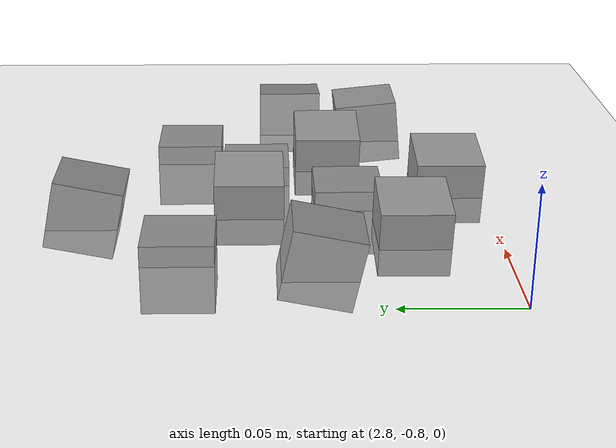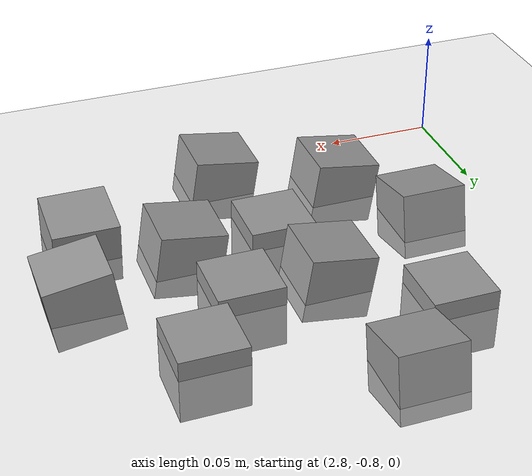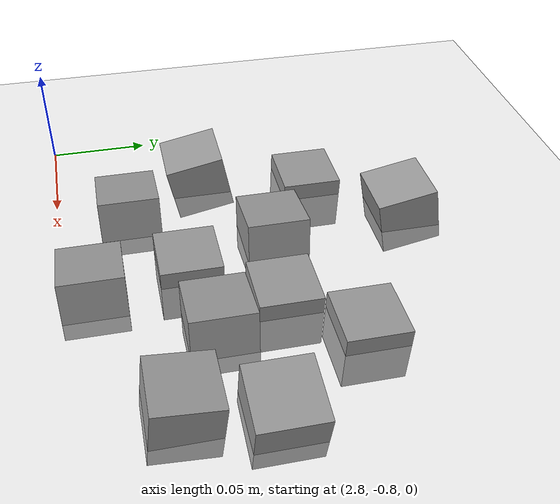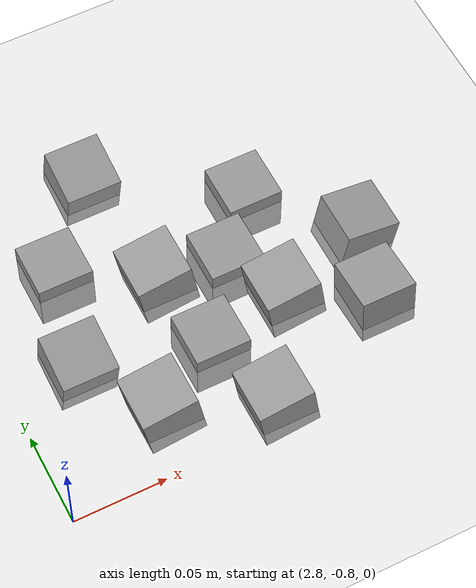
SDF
<sdf version="1.7">
 <world name="default">
  <model name="ground_plane">
   <static>1</static>
   <link name="link">
    <collision name="collision">
     <geometry><plane><normal>0 0 1</normal><size>100 100</size></plane></geometry>
     <surface><friction><ode><mu>100</mu><mu2>50</mu2></ode></friction></surface>
    </collision>
    <visual name="visual">
     <cast_shadows>0</cast_shadows>
     <geometry><plane><normal>0 0 1</normal><size>100 100</size></plane></geometry>
     <material>
      <script><uri>file://media/materials/scripts/gazebo.material</uri><name>Gazebo/Grey</name></script>
     </material>
    </visual>
   </link>
  </model>
  <model name="stone_road_9">
   <link name="link_0_clone_12">
    <inertial>
     <mass>1</mass>
     <inertia>
      <ixx>0.166667</ixx>
      <ixy>0</ixy>
      <ixz>0</ixz>
      <iyy>0.166667</iyy>
      <iyz>0</iyz>
      <izz>0.166667</izz>
     </inertia>
    </inertial>
    <pose>0.142624 -0.262715 0.003778 0.2 -0 0</pose>
    <kinematic>1</kinematic>
    <visual name="visual">
     <geometry><box><size>0.03 0.03 0.03</size></box></geometry>
     <material>
      <lighting>1</lighting>
      <script><uri>file://media/materials/scripts/gazebo.material</uri><name>Gazebo/Grey</name></script>
      <shader type="pixel"><normal_map>__default__</normal_map></shader>
      <ambient>0.3 0.3 0.3 1</ambient>
      <diffuse>0.7 0.7 0.7 1</diffuse>
      <specular>0.01 0.01 0.01 1</specular>
      <emissive>0 0 0 1</emissive>
     </material>
    </visual>
    <collision name="collision">
     <geometry><box><size>0.03 0.03 0.03</size></box></geometry>
     <surface>
      <friction>
       <ode><mu>1</mu><mu2>1</mu2><fdir1>0 0 0</fdir1><slip1>0</slip1><slip2>0</slip2></ode>
       <torsional>
        <coefficient>1</coefficient>
        <patch_radius>0</patch_radius>
        <surface_radius>0</surface_radius>
        <use_patch_radius>1</use_patch_radius>
        <ode><slip>0</slip></ode>
       </torsional>
      </friction>
      <bounce><restitution_coefficient>0</restitution_coefficient><threshold>1e+06</threshold></bounce>
      <contact>
       <collide_without_contact>0</collide_without_contact>
       <collide_without_contact_bitmask>1</collide_without_contact_bitmask>
       <collide_bitmask>1</collide_bitmask>
       <ode>
        <soft_cfm>0</soft_cfm>
        <soft_erp>0.2</soft_erp>
        <kp>1e+13</kp>
        <kd>1</kd>
        <max_vel>0.01</max_vel>
        <min_depth>0</min_depth>
       </ode>
       <bullet>
        <split_impulse>1</split_impulse>
        <split_impulse_penetration_threshold>-0.01</split_impulse_penetration_threshold>
        <soft_cfm>0</soft_cfm>
        <soft_erp>0.2</soft_erp>
        <kp>1e+13</kp>
        <kd>1</kd>
       </bullet>
      </contact>
     </surface>
    </collision>
   </link>
   <static>0</static>
   <pose>2.743 -0.362549 -0 0 -0 0</pose>
  </model>
  <model name="stone_road_12">
   <link name="link_0_clone_10">
    <inertial>
     <mass>1</mass>
     <inertia>
      <ixx>0.166667</ixx>
      <ixy>0</ixy>
      <ixz>0</ixz>
      <iyy>0.166667</iyy>
      <iyz>0</iyz>
      <izz>0.166667</izz>
     </inertia>
    </inertial>
    <pose>-0.01295 0.17123 0.003778 0.2 -0 0</pose>
    <kinematic>1</kinematic>
    <visual name="visual">
     <geometry><box><size>0.03 0.03 0.03</size></box></geometry>
     <material>
      <lighting>1</lighting>
      <script><uri>file://media/materials/scripts/gazebo.material</uri><name>Gazebo/Grey</name></script>
      <shader type="pixel"><normal_map>__default__</normal_map></shader>
      <ambient>0.3 0.3 0.3 1</ambient>
      <diffuse>0.7 0.7 0.7 1</diffuse>
      <specular>0.01 0.01 0.01 1</specular>
      <emissive>0 0 0 1</emissive>
     </material>
    </visual>
    <collision name="collision">
     <geometry><box><size>0.03 0.03 0.03</size></box></geometry>
     <surface>
      <friction>
       <ode><mu>1</mu><mu2>1</mu2><fdir1>0 0 0</fdir1><slip1>0</slip1><slip2>0</slip2></ode>
       <torsional>
        <coefficient>1</coefficient>
        <patch_radius>0</patch_radius>
        <surface_radius>0</surface_radius>
        <use_patch_radius>1</use_patch_radius>
        <ode><slip>0</slip></ode>
       </torsional>
      </friction>
      <bounce><restitution_coefficient>0</restitution_coefficient><threshold>1e+06</threshold></bounce>
      <contact>
       <collide_without_contact>0</collide_without_contact>
       <collide_without_contact_bitmask>1</collide_without_contact_bitmask>
       <collide_bitmask>1</collide_bitmask>
       <ode>
        <soft_cfm>0</soft_cfm>
        <soft_erp>0.2</soft_erp>
        <kp>1e+13</kp>
        <kd>1</kd>
        <max_vel>0.01</max_vel>
        <min_depth>0</min_depth>
       </ode>
       <bullet>
        <split_impulse>1</split_impulse>
        <split_impulse_penetration_threshold>-0.01</split_impulse_penetration_threshold>
        <soft_cfm>0</soft_cfm>
        <soft_erp>0.2</soft_erp>
        <kp>1e+13</kp>
        <kd>1</kd>
       </bullet>
      </contact>
     </surface>
    </collision>
   </link>
   <link name="link_0_clone_2_clone_2">
    <inertial>
     <mass>1</mass>
     <inertia>
      <ixx>0.166667</ixx>
      <ixy>0</ixy>
      <ixz>0</ixz>
      <iyy>0.166667</iyy>
      <iyz>0</iyz>
      <izz>0.166667</izz>
     </inertia>
    </inertial>
    <pose>0.066563 0.110568 0.003778 0 -0.15 0</pose>
    <kinematic>1</kinematic>
    <visual name="visual">
     <geometry><box><size>0.03 0.03 0.03</size></box></geometry>
     <material>
      <lighting>1</lighting>
      <script><uri>file://media/materials/scripts/gazebo.material</uri><name>Gazebo/Grey</name></script>
      <shader type="pixel"><normal_map>__default__</normal_map></shader>
      <ambient>0.3 0.3 0.3 1</ambient>
      <diffuse>0.7 0.7 0.7 1</diffuse>
      <specular>0.01 0.01 0.01 1</specular>
      <emissive>0 0 0 1</emissive>
     </material>
    </visual>
    <collision name="collision">
     <geometry><box><size>0.03 0.03 0.03</size></box></geometry>
     <surface>
      <friction>
       <ode><mu>1</mu><mu2>1</mu2><fdir1>0 0 0</fdir1><slip1>0</slip1><slip2>0</slip2></ode>
       <torsional>
        <coefficient>1</coefficient>
        <patch_radius>0</patch_radius>
        <surface_radius>0</surface_radius>
        <use_patch_radius>1</use_patch_radius>
        <ode><slip>0</slip></ode>
       </torsional>
      </friction>
      <bounce><restitution_coefficient>0</restitution_coefficient><threshold>1e+06</threshold></bounce>
      <contact>
       <collide_without_contact>0</collide_without_contact>
       <collide_without_contact_bitmask>1</collide_without_contact_bitmask>
       <collide_bitmask>1</collide_bitmask>
       <ode>
        <soft_cfm>0</soft_cfm>
        <soft_erp>0.2</soft_erp>
        <kp>1e+13</kp>
        <kd>1</kd>
        <max_vel>0.01</max_vel>
        <min_depth>0</min_depth>
       </ode>
       <bullet>
        <split_impulse>1</split_impulse>
        <split_impulse_penetration_threshold>-0.01</split_impulse_penetration_threshold>
        <soft_cfm>0</soft_cfm>
        <soft_erp>0.2</soft_erp>
        <kp>1e+13</kp>
        <kd>1</kd>
       </bullet>
      </contact>
     </surface>
    </collision>
   </link>
   <link name="link_0_clone_2_clone_2_clone_10">
    <inertial>
     <mass>1</mass>
     <inertia>
      <ixx>0.166667</ixx>
      <ixy>0</ixy>
      <ixz>0</ixz>
      <iyy>0.166667</iyy>
      <iyz>0</iyz>
      <izz>0.166667</izz>
     </inertia>
    </inertial>
    <pose>0.09869 0.163436 0.003778 0 -0.15 0</pose>
    <kinematic>1</kinematic>
    <visual name="visual">
     <geometry><box><size>0.03 0.03 0.03</size></box></geometry>
     <material>
      <lighting>1</lighting>
      <script><uri>file://media/materials/scripts/gazebo.material</uri><name>Gazebo/Grey</name></script>
      <shader type="pixel"><normal_map>__default__</normal_map></shader>
      <ambient>0.3 0.3 0.3 1</ambient>
      <diffuse>0.7 0.7 0.7 1</diffuse>
      <specular>0.01 0.01 0.01 1</specular>
      <emissive>0 0 0 1</emissive>
     </material>
    </visual>
    <collision name="collision">
     <geometry><box><size>0.03 0.03 0.03</size></box></geometry>
     <surface>
      <friction>
       <ode><mu>1</mu><mu2>1</mu2><fdir1>0 0 0</fdir1><slip1>0</slip1><slip2>0</slip2></ode>
       <torsional>
        <coefficient>1</coefficient>
        <patch_radius>0</patch_radius>
        <surface_radius>0</surface_radius>
        <use_patch_radius>1</use_patch_radius>
        <ode><slip>0</slip></ode>
       </torsional>
      </friction>
      <bounce><restitution_coefficient>0</restitution_coefficient><threshold>1e+06</threshold></bounce>
      <contact>
       <collide_without_contact>0</collide_without_contact>
       <collide_without_contact_bitmask>1</collide_without_contact_bitmask>
       <collide_bitmask>1</collide_bitmask>
       <ode>
        <soft_cfm>0</soft_cfm>
        <soft_erp>0.2</soft_erp>
        <kp>1e+13</kp>
        <kd>1</kd>
        <max_vel>0.01</max_vel>
        <min_depth>0</min_depth>
       </ode>
       <bullet>
        <split_impulse>1</split_impulse>
        <split_impulse_penetration_threshold>-0.01</split_impulse_penetration_threshold>
        <soft_cfm>0</soft_cfm>
        <soft_erp>0.2</soft_erp>
        <kp>1e+13</kp>
        <kd>1</kd>
       </bullet>
      </contact>
     </surface>
    </collision>
   </link>
   <link name="link_0_clone_2_clone_2_clone_12">
    <inertial>
     <mass>1</mass>
     <inertia>
      <ixx>0.166667</ixx>
      <ixy>0</ixy>
      <ixz>0</ixz>
      <iyy>0.166667</iyy>
      <iyz>0</iyz>
      <izz>0.166667</izz>
     </inertia>
    </inertial>
    <pose>0.044693 0.200081 0.003778 0 -0.15 0</pose>
    <kinematic>1</kinematic>
    <visual name="visual">
     <geometry><box><size>0.03 0.03 0.03</size></box></geometry>
     <material>
      <lighting>1</lighting>
      <script><uri>file://media/materials/scripts/gazebo.material</uri><name>Gazebo/Grey</name></script>
      <shader type="pixel"><normal_map>__default__</normal_map></shader>
      <ambient>0.3 0.3 0.3 1</ambient>
      <diffuse>0.7 0.7 0.7 1</diffuse>
      <specular>0.01 0.01 0.01 1</specular>
      <emissive>0 0 0 1</emissive>
     </material>
    </visual>
    <collision name="collision">
     <geometry><box><size>0.03 0.03 0.03</size></box></geometry>
     <surface>
      <friction>
       <ode><mu>1</mu><mu2>1</mu2><fdir1>0 0 0</fdir1><slip1>0</slip1><slip2>0</slip2></ode>
       <torsional>
        <coefficient>1</coefficient>
        <patch_radius>0</patch_radius>
        <surface_radius>0</surface_radius>
        <use_patch_radius>1</use_patch_radius>
        <ode><slip>0</slip></ode>
       </torsional>
      </friction>
      <bounce><restitution_coefficient>0</restitution_coefficient><threshold>1e+06</threshold></bounce>
      <contact>
       <collide_without_contact>0</collide_without_contact>
       <collide_without_contact_bitmask>1</collide_without_contact_bitmask>
       <collide_bitmask>1</collide_bitmask>
       <ode>
        <soft_cfm>0</soft_cfm>
        <soft_erp>0.2</soft_erp>
        <kp>1e+13</kp>
        <kd>1</kd>
        <max_vel>0.01</max_vel>
        <min_depth>0</min_depth>
       </ode>
       <bullet>
        <split_impulse>1</split_impulse>
        <split_impulse_penetration_threshold>-0.01</split_impulse_penetration_threshold>
        <soft_cfm>0</soft_cfm>
        <soft_erp>0.2</soft_erp>
        <kp>1e+13</kp>
        <kd>1</kd>
       </bullet>
      </contact>
     </surface>
    </collision>
   </link>
   <link name="link_0_clone_2_clone_2_clone_13">
    <inertial>
     <mass>1</mass>
     <inertia>
      <ixx>0.166667</ixx>
      <ixy>0</ixy>
      <ixz>0</ixz>
      <iyy>0.166667</iyy>
      <iyz>0</iyz>
      <izz>0.166667</izz>
     </inertia>
    </inertial>
    <pose>0.014407 0.13189 0.003778 0 -0.15 0</pose>
    <kinematic>1</kinematic>
    <visual name="visual">
     <geometry><box><size>0.03 0.03 0.03</size></box></geometry>
     <material>
      <lighting>1</lighting>
      <script><uri>file://media/materials/scripts/gazebo.material</uri><name>Gazebo/Grey</name></script>
      <shader type="pixel"><normal_map>__default__</normal_map></shader>
      <ambient>0.3 0.3 0.3 1</ambient>
      <diffuse>0.7 0.7 0.7 1</diffuse>
      <specular>0.01 0.01 0.01 1</specular>
      <emissive>0 0 0 1</emissive>
     </material>
    </visual>
    <collision name="collision">
     <geometry><box><size>0.03 0.03 0.03</size></box></geometry>
     <surface>
      <friction>
       <ode><mu>1</mu><mu2>1</mu2><fdir1>0 0 0</fdir1><slip1>0</slip1><slip2>0</slip2></ode>
       <torsional>
        <coefficient>1</coefficient>
        <patch_radius>0</patch_radius>
        <surface_radius>0</surface_radius>
        <use_patch_radius>1</use_patch_radius>
        <ode><slip>0</slip></ode>
       </torsional>
      </friction>
      <bounce><restitution_coefficient>0</restitution_coefficient><threshold>1e+06</threshold></bounce>
      <contact>
       <collide_without_contact>0</collide_without_contact>
       <collide_without_contact_bitmask>1</collide_without_contact_bitmask>
       <collide_bitmask>1</collide_bitmask>
       <ode>
        <soft_cfm>0</soft_cfm>
        <soft_erp>0.2</soft_erp>
        <kp>1e+13</kp>
        <kd>1</kd>
        <max_vel>0.01</max_vel>
        <min_depth>0</min_depth>
       </ode>
       <bullet>
        <split_impulse>1</split_impulse>
        <split_impulse_penetration_threshold>-0.01</split_impulse_penetration_threshold>
        <soft_cfm>0</soft_cfm>
        <soft_erp>0.2</soft_erp>
        <kp>1e+13</kp>
        <kd>1</kd>
       </bullet>
      </contact>
     </surface>
    </collision>
   </link>
   <link name="link_0_clone_2_clone_2_clone_13_clone">
    <inertial>
     <mass>1</mass>
     <inertia>
      <ixx>0.166667</ixx>
      <ixy>0</ixy>
      <ixz>0</ixz>
      <iyy>0.166667</iyy>
      <iyz>0</iyz>
      <izz>0.166667</izz>
     </inertia>
    </inertial>
    <pose>0.138846 0.140956 0.003778 -0.1 0 0</pose>
    <kinematic>1</kinematic>
    <visual name="visual">
     <geometry><box><size>0.03 0.03 0.03</size></box></geometry>
     <material>
      <lighting>1</lighting>
      <script><uri>file://media/materials/scripts/gazebo.material</uri><name>Gazebo/Grey</name></script>
      <shader type="pixel"><normal_map>__default__</normal_map></shader>
      <ambient>0.3 0.3 0.3 1</ambient>
      <diffuse>0.7 0.7 0.7 1</diffuse>
      <specular>0.01 0.01 0.01 1</specular>
      <emissive>0 0 0 1</emissive>
     </material>
    </visual>
    <collision name="collision">
     <geometry><box><size>0.03 0.03 0.03</size></box></geometry>
     <surface>
      <friction>
       <ode><mu>1</mu><mu2>1</mu2><fdir1>0 0 0</fdir1><slip1>0</slip1><slip2>0</slip2></ode>
       <torsional>
        <coefficient>1</coefficient>
        <patch_radius>0</patch_radius>
        <surface_radius>0</surface_radius>
        <use_patch_radius>1</use_patch_radius>
        <ode><slip>0</slip></ode>
       </torsional>
      </friction>
      <bounce><restitution_coefficient>0</restitution_coefficient><threshold>1e+06</threshold></bounce>
      <contact>
       <collide_without_contact>0</collide_without_contact>
       <collide_without_contact_bitmask>1</collide_without_contact_bitmask>
       <collide_bitmask>1</collide_bitmask>
       <ode>
        <soft_cfm>0</soft_cfm>
        <soft_erp>0.2</soft_erp>
        <kp>1e+13</kp>
        <kd>1</kd>
        <max_vel>0.01</max_vel>
        <min_depth>0</min_depth>
       </ode>
       <bullet>
        <split_impulse>1</split_impulse>
        <split_impulse_penetration_threshold>-0.01</split_impulse_penetration_threshold>
        <soft_cfm>0</soft_cfm>
        <soft_erp>0.2</soft_erp>
        <kp>1e+13</kp>
        <kd>1</kd>
       </bullet>
      </contact>
     </surface>
    </collision>
   </link>
   <link name="link_0_clone_2_clone_2_clone_13_clone_clone_16">
    <inertial>
     <mass>1</mass>
     <inertia>
      <ixx>0.166667</ixx>
      <ixy>0</ixy>
      <ixz>0</ixz>
      <iyy>0.166667</iyy>
      <iyz>0</iyz>
      <izz>0.166667</izz>
     </inertia>
    </inertial>
    <pose>0.108948 0.22849 -0.006222 0 -0 0</pose>
    <kinematic>1</kinematic>
    <visual name="visual">
     <geometry><box><size>0.03 0.03 0.03</size></box></geometry>
     <material>
      <lighting>1</lighting>
      <script><uri>file://media/materials/scripts/gazebo.material</uri><name>Gazebo/Grey</name></script>
      <shader type="pixel"><normal_map>__default__</normal_map></shader>
      <ambient>0.3 0.3 0.3 1</ambient>
      <diffuse>0.7 0.7 0.7 1</diffuse>
      <specular>0.01 0.01 0.01 1</specular>
      <emissive>0 0 0 1</emissive>
     </material>
    </visual>
    <collision name="collision">
     <geometry><box><size>0.03 0.03 0.03</size></box></geometry>
     <surface>
      <friction>
       <ode><mu>1</mu><mu2>1</mu2><fdir1>0 0 0</fdir1><slip1>0</slip1><slip2>0</slip2></ode>
       <torsional>
        <coefficient>1</coefficient>
        <patch_radius>0</patch_radius>
        <surface_radius>0</surface_radius>
        <use_patch_radius>1</use_patch_radius>
        <ode><slip>0</slip></ode>
       </torsional>
      </friction>
      <bounce><restitution_coefficient>0</restitution_coefficient><threshold>1e+06</threshold></bounce>
      <contact>
       <collide_without_contact>0</collide_without_contact>
       <collide_without_contact_bitmask>1</collide_without_contact_bitmask>
       <collide_bitmask>1</collide_bitmask>
       <ode>
        <soft_cfm>0</soft_cfm>
        <soft_erp>0.2</soft_erp>
        <kp>1e+13</kp>
        <kd>1</kd>
        <max_vel>0.01</max_vel>
        <min_depth>0</min_depth>
       </ode>
       <bullet>
        <split_impulse>1</split_impulse>
        <split_impulse_penetration_threshold>-0.01</split_impulse_penetration_threshold>
        <soft_cfm>0</soft_cfm>
        <soft_erp>0.2</soft_erp>
        <kp>1e+13</kp>
        <kd>1</kd>
       </bullet>
      </contact>
     </surface>
    </collision>
   </link>
   <link name="link_0_clone_2_clone_2_clone_13_clone_clone_16_clone">
    <inertial>
     <mass>1</mass>
     <inertia>
      <ixx>0.166667</ixx>
      <ixy>0</ixy>
      <ixz>0</ixz>
      <iyy>0.166667</iyy>
      <iyz>0</iyz>
      <izz>0.166667</izz>
     </inertia>
    </inertial>
    <pose>0.0535 0.156403 -0.006222 0 -0 0</pose>
    <kinematic>1</kinematic>
    <visual name="visual">
     <geometry><box><size>0.03 0.03 0.03</size></box></geometry>
     <material>
      <lighting>1</lighting>
      <script><uri>file://media/materials/scripts/gazebo.material</uri><name>Gazebo/Grey</name></script>
      <shader type="pixel"><normal_map>__default__</normal_map></shader>
      <ambient>0.3 0.3 0.3 1</ambient>
      <diffuse>0.7 0.7 0.7 1</diffuse>
      <specular>0.01 0.01 0.01 1</specular>
      <emissive>0 0 0 1</emissive>
     </material>
    </visual>
    <collision name="collision">
     <geometry><box><size>0.03 0.03 0.03</size></box></geometry>
     <surface>
      <friction>
       <ode><mu>1</mu><mu2>1</mu2><fdir1>0 0 0</fdir1><slip1>0</slip1><slip2>0</slip2></ode>
       <torsional>
        <coefficient>1</coefficient>
        <patch_radius>0</patch_radius>
        <surface_radius>0</surface_radius>
        <use_patch_radius>1</use_patch_radius>
        <ode><slip>0</slip></ode>
       </torsional>
      </friction>
      <bounce><restitution_coefficient>0</restitution_coefficient><threshold>1e+06</threshold></bounce>
      <contact>
       <collide_without_contact>0</collide_without_contact>
       <collide_without_contact_bitmask>1</collide_without_contact_bitmask>
       <collide_bitmask>1</collide_bitmask>
       <ode>
        <soft_cfm>0</soft_cfm>
        <soft_erp>0.2</soft_erp>
        <kp>1e+13</kp>
        <kd>1</kd>
        <max_vel>0.01</max_vel>
        <min_depth>0</min_depth>
       </ode>
       <bullet>
        <split_impulse>1</split_impulse>
        <split_impulse_penetration_threshold>-0.01</split_impulse_penetration_threshold>
        <soft_cfm>0</soft_cfm>
        <soft_erp>0.2</soft_erp>
        <kp>1e+13</kp>
        <kd>1</kd>
       </bullet>
      </contact>
     </surface>
    </collision>
   </link>
   <link name="link_0_clone_2_clone_2_clone_13_clone_clone_16_clone_23">
    <inertial>
     <mass>1</mass>
     <inertia>
      <ixx>0.166667</ixx>
      <ixy>0</ixy>
      <ixz>0</ixz>
      <iyy>0.166667</iyy>
      <iyz>0</iyz>
      <izz>0.166667</izz>
     </inertia>
    </inertial>
    <pose>0.000385 0.228664 -0.006222 0 -0 0</pose>
    <kinematic>1</kinematic>
    <visual name="visual">
     <geometry><box><size>0.03 0.03 0.03</size></box></geometry>
     <material>
      <lighting>1</lighting>
      <script><uri>file://media/materials/scripts/gazebo.material</uri><name>Gazebo/Grey</name></script>
      <shader type="pixel"><normal_map>__default__</normal_map></shader>
      <ambient>0.3 0.3 0.3 1</ambient>
      <diffuse>0.7 0.7 0.7 1</diffuse>
      <specular>0.01 0.01 0.01 1</specular>
      <emissive>0 0 0 1</emissive>
     </material>
    </visual>
    <collision name="collision">
     <geometry><box><size>0.03 0.03 0.03</size></box></geometry>
     <surface>
      <friction>
       <ode><mu>1</mu><mu2>1</mu2><fdir1>0 0 0</fdir1><slip1>0</slip1><slip2>0</slip2></ode>
       <torsional>
        <coefficient>1</coefficient>
        <patch_radius>0</patch_radius>
        <surface_radius>0</surface_radius>
        <use_patch_radius>1</use_patch_radius>
        <ode><slip>0</slip></ode>
       </torsional>
      </friction>
      <bounce><restitution_coefficient>0</restitution_coefficient><threshold>1e+06</threshold></bounce>
      <contact>
       <collide_without_contact>0</collide_without_contact>
       <collide_without_contact_bitmask>1</collide_without_contact_bitmask>
       <collide_bitmask>1</collide_bitmask>
       <ode>
        <soft_cfm>0</soft_cfm>
        <soft_erp>0.2</soft_erp>
        <kp>1e+13</kp>
        <kd>1</kd>
        <max_vel>0.01</max_vel>
        <min_depth>0</min_depth>
       </ode>
       <bullet>
        <split_impulse>1</split_impulse>
        <split_impulse_penetration_threshold>-0.01</split_impulse_penetration_threshold>
        <soft_cfm>0</soft_cfm>
        <soft_erp>0.2</soft_erp>
        <kp>1e+13</kp>
        <kd>1</kd>
       </bullet>
      </contact>
     </surface>
    </collision>
   </link>
   <link name="link_0_clone_2_clone_2_clone_13_clone_clone_16_clone_24">
    <inertial>
     <mass>1</mass>
     <inertia>
      <ixx>0.166667</ixx>
      <ixy>0</ixy>
      <ixz>0</ixz>
      <iyy>0.166667</iyy>
      <iyz>0</iyz>
      <izz>0.166667</izz>
     </inertia>
    </inertial>
    <pose>0.08246 0.196776 -0.006222 0 -0 0</pose>
    <kinematic>1</kinematic>
    <visual name="visual">
     <geometry><box><size>0.03 0.03 0.03</size></box></geometry>
     <material>
      <lighting>1</lighting>
      <script><uri>file://media/materials/scripts/gazebo.material</uri><name>Gazebo/Grey</name></script>
      <shader type="pixel"><normal_map>__default__</normal_map></shader>
      <ambient>0.3 0.3 0.3 1</ambient>
      <diffuse>0.7 0.7 0.7 1</diffuse>
      <specular>0.01 0.01 0.01 1</specular>
      <emissive>0 0 0 1</emissive>
     </material>
    </visual>
    <collision name="collision">
     <geometry><box><size>0.03 0.03 0.03</size></box></geometry>
     <surface>
      <friction>
       <ode><mu>1</mu><mu2>1</mu2><fdir1>0 0 0</fdir1><slip1>0</slip1><slip2>0</slip2></ode>
       <torsional>
        <coefficient>1</coefficient>
        <patch_radius>0</patch_radius>
        <surface_radius>0</surface_radius>
        <use_patch_radius>1</use_patch_radius>
        <ode><slip>0</slip></ode>
       </torsional>
      </friction>
      <bounce><restitution_coefficient>0</restitution_coefficient><threshold>1e+06</threshold></bounce>
      <contact>
       <collide_without_contact>0</collide_without_contact>
       <collide_without_contact_bitmask>1</collide_without_contact_bitmask>
       <collide_bitmask>1</collide_bitmask>
       <ode>
        <soft_cfm>0</soft_cfm>
        <soft_erp>0.2</soft_erp>
        <kp>1e+13</kp>
        <kd>1</kd>
        <max_vel>0.01</max_vel>
        <min_depth>0</min_depth>
       </ode>
       <bullet>
        <split_impulse>1</split_impulse>
        <split_impulse_penetration_threshold>-0.01</split_impulse_penetration_threshold>
        <soft_cfm>0</soft_cfm>
        <soft_erp>0.2</soft_erp>
        <kp>1e+13</kp>
        <kd>1</kd>
       </bullet>
      </contact>
     </surface>
    </collision>
   </link>
   <link name="link_0_clone_2_clone_9">
    <inertial>
     <mass>1</mass>
     <inertia>
      <ixx>0.166667</ixx>
      <ixy>0</ixy>
      <ixz>0</ixz>
      <iyy>0.166667</iyy>
      <iyz>0</iyz>
      <izz>0.166667</izz>
     </inertia>
    </inertial>
    <pose>0.148876 0.179752 0.003778 0 0.15 0</pose>
    <kinematic>1</kinematic>
    <visual name="visual">
     <geometry><box><size>0.03 0.03 0.03</size></box></geometry>
     <material>
      <lighting>1</lighting>
      <script><uri>file://media/materials/scripts/gazebo.material</uri><name>Gazebo/Grey</name></script>
      <shader type="pixel"><normal_map>__default__</normal_map></shader>
      <ambient>0.3 0.3 0.3 1</ambient>
      <diffuse>0.7 0.7 0.7 1</diffuse>
      <specular>0.01 0.01 0.01 1</specular>
      <emissive>0 0 0 1</emissive>
     </material>
    </visual>
    <collision name="collision">
     <geometry><box><size>0.03 0.03 0.03</size></box></geometry>
     <surface>
      <friction>
       <ode><mu>1</mu><mu2>1</mu2><fdir1>0 0 0</fdir1><slip1>0</slip1><slip2>0</slip2></ode>
       <torsional>
        <coefficient>1</coefficient>
        <patch_radius>0</patch_radius>
        <surface_radius>0</surface_radius>
        <use_patch_radius>1</use_patch_radius>
        <ode><slip>0</slip></ode>
       </torsional>
      </friction>
      <bounce><restitution_coefficient>0</restitution_coefficient><threshold>1e+06</threshold></bounce>
      <contact>
       <collide_without_contact>0</collide_without_contact>
       <collide_without_contact_bitmask>1</collide_without_contact_bitmask>
       <collide_bitmask>1</collide_bitmask>
       <ode>
        <soft_cfm>0</soft_cfm>
        <soft_erp>0.2</soft_erp>
        <kp>1e+13</kp>
        <kd>1</kd>
        <max_vel>0.01</max_vel>
        <min_depth>0</min_depth>
       </ode>
       <bullet>
        <split_impulse>1</split_impulse>
        <split_impulse_penetration_threshold>-0.01</split_impulse_penetration_threshold>
        <soft_cfm>0</soft_cfm>
        <soft_erp>0.2</soft_erp>
        <kp>1e+13</kp>
        <kd>1</kd>
       </bullet>
      </contact>
     </surface>
    </collision>
   </link>
   <static>0</static>
   <pose>2.85052 -0.895534 -0 0 -0 0</pose>
  </model>
 </world>
</sdf>
